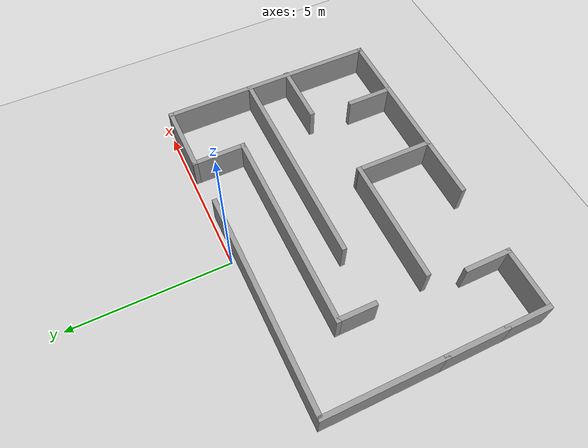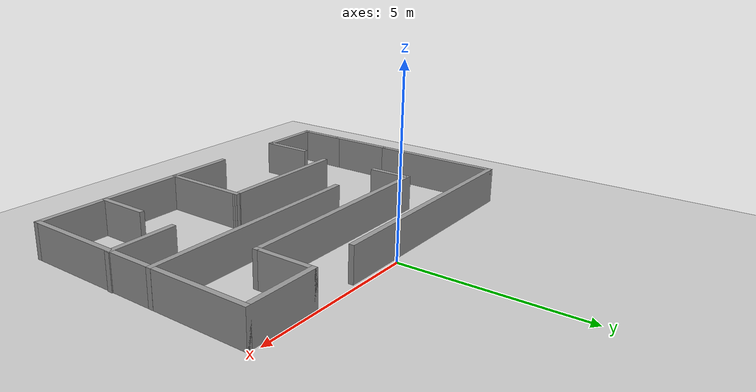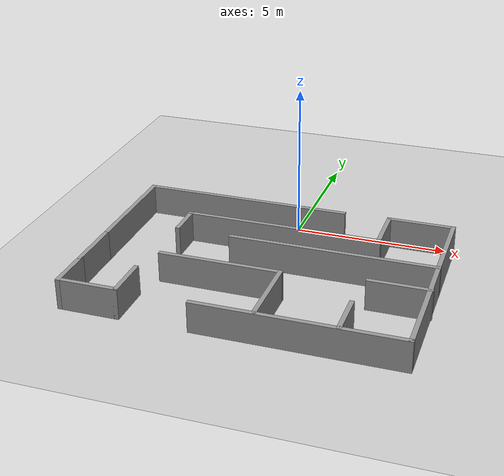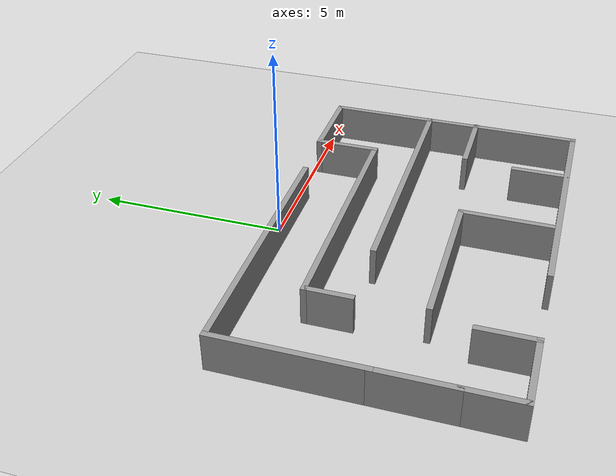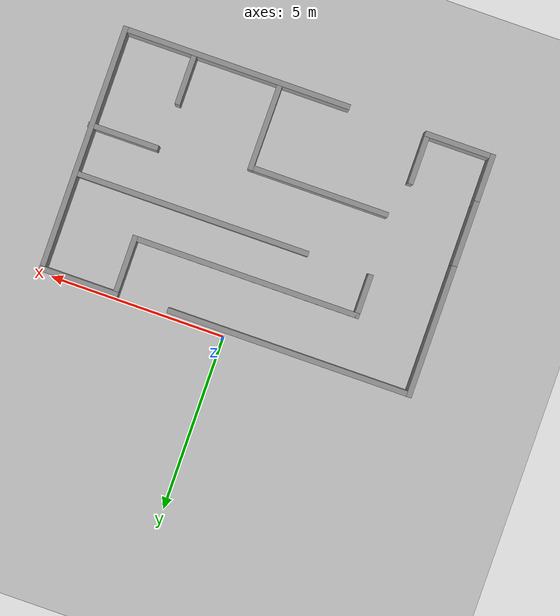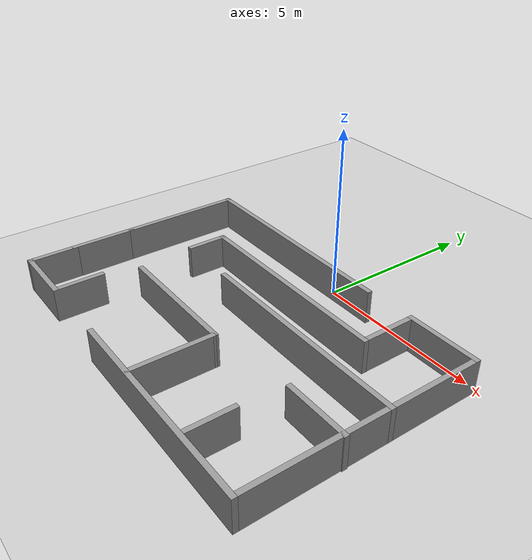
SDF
<sdf version="1.4">
  <world name="default">

    <scene>
      <ambient>0.4 0.4 0.4 1</ambient>
      <background>0.7 0.7 0.7 1</background>
      <shadows>true</shadows>
    </scene>

    <!-- A global light source -->
    <include>
      <uri>model://sun</uri>
    </include>

    <!-- A ground plane -->
    <include>
      <uri>model://ground_plane</uri>
    </include>

    <physics type="ode">
      <real_time_update_rate>1000.0</real_time_update_rate>
      <max_step_size>0.001</max_step_size>
      <real_time_factor>1</real_time_factor>
      <ode>
        <solver>
          <type>quick</type>
          <iters>150</iters>
          <precon_iters>0</precon_iters>
          <sor>1.400000</sor>
          <use_dynamic_moi_rescaling>1</use_dynamic_moi_rescaling>
        </solver>
        <constraints>
          <cfm>0.00001</cfm>
          <erp>0.2</erp>
          <contact_max_correcting_vel>2000.000000</contact_max_correcting_vel>
          <contact_surface_layer>0.01000</contact_surface_layer>
        </constraints>
      </ode>
    </physics>

    <!-- Load maze -->
    <include>
      <uri>model://test_maze</uri>
    </include>
  </world>

</sdf>

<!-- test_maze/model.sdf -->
<sdf version='1.6'>
  <model name='test_maze'>
    <pose frame=''>0 -3.57379 0 0 -0 0</pose>
    <link name='Wall_12'>
      <collision name='Wall_12_Collision'>
        <geometry>
          <box>
            <size>3.75 0.15 1</size>
          </box>
        </geometry>
        <pose frame=''>0 0 0.5 0 -0 0</pose>
      </collision>
      <visual name='Wall_12_Visual'>
        <pose frame=''>0 0 0.5 0 -0 0</pose>
        <geometry>
          <box>
            <size>3.75 0.15 1</size>
          </box>
        </geometry>
        <material>
          <script>
            <uri>file://media/materials/scripts/gazebo.material</uri>
            <name>Gazebo/Grey</name>
          </script>
          <ambient>1 1 1 1</ambient>
        </material>
        <meta>
          <layer>0</layer>
        </meta>
      </visual>
      <pose frame=''>-5.2625 1.5725 0 0 -0 1.5708</pose>
    </link>
    <link name='Wall_13'>
      <collision name='Wall_13_Collision'>
        <geometry>
          <box>
            <size>7 0.15 1</size>
          </box>
        </geometry>
        <pose frame=''>0 0 0.5 0 -0 0</pose>
      </collision>
      <visual name='Wall_13_Visual'>
        <pose frame=''>0 0 0.5 0 -0 0</pose>
        <geometry>
          <box>
            <size>7 0.15 1</size>
          </box>
        </geometry>
        <material>
          <script>
            <uri>file://media/materials/scripts/gazebo.material</uri>
            <name>Gazebo/Grey</name>
          </script>
          <ambient>1 1 1 1</ambient>
        </material>
        <meta>
          <layer>0</layer>
        </meta>
      </visual>
      <pose frame=''>-1.8375 3.3725 0 0 -0 0</pose>
    </link>
    <link name='Wall_15'>
      <collision name='Wall_15_Collision'>
        <geometry>
          <box>
            <size>2.25 0.15 1</size>
          </box>
        </geometry>
        <pose frame=''>0 0 0.5 0 -0 0</pose>
      </collision>
      <visual name='Wall_15_Visual'>
        <pose frame=''>0 0 0.5 0 -0 0</pose>
        <geometry>
          <box>
            <size>2.25 0.15 1</size>
          </box>
        </geometry>
        <material>
          <script>
            <uri>file://media/materials/scripts/gazebo.material</uri>
            <name>Gazebo/Grey</name>
          </script>
          <ambient>1 1 1 1</ambient>
        </material>
        <meta>
          <layer>0</layer>
        </meta>
      </visual>
      <pose frame=''>4.1845 3.4275 0 0 -0 0</pose>
    </link>
    <link name='Wall_16'>
      <collision name='Wall_16_Collision'>
        <geometry>
          <box>
            <size>7 0.15 1</size>
          </box>
        </geometry>
        <pose frame=''>0 0 0.5 0 -0 0</pose>
      </collision>
      <visual name='Wall_16_Visual'>
        <pose frame=''>0 0 0.5 0 -0 0</pose>
        <geometry>
          <box>
            <size>7 0.15 1</size>
          </box>
        </geometry>
        <material>
          <script>
            <uri>file://media/materials/scripts/gazebo.material</uri>
            <name>Gazebo/Grey</name>
          </script>
          <ambient>1 1 1 1</ambient>
        </material>
        <meta>
          <layer>0</layer>
        </meta>
      </visual>
      <pose frame=''>5.2345 0.0025 0 0 -0 -1.5708</pose>
    </link>
    <link name='Wall_17'>
      <collision name='Wall_17_Collision'>
        <geometry>
          <box>
            <size>6.5 0.15 1</size>
          </box>
        </geometry>
        <pose frame=''>0 0 0.5 0 -0 0</pose>
      </collision>
      <visual name='Wall_17_Visual'>
        <pose frame=''>0 0 0.5 0 -0 0</pose>
        <geometry>
          <box>
            <size>6.5 0.15 1</size>
          </box>
        </geometry>
        <material>
          <script>
            <uri>file://media/materials/scripts/gazebo.material</uri>
            <name>Gazebo/Grey</name>
          </script>
          <ambient>1 1 1 1</ambient>
        </material>
        <meta>
          <layer>0</layer>
        </meta>
      </visual>
      <pose frame=''>2.0595 -3.4225 0 0 -0 3.14159</pose>
    </link>
    <link name='Wall_19'>
      <collision name='Wall_19_Collision'>
        <geometry>
          <box>
            <size>1.5 0.15 1</size>
          </box>
        </geometry>
        <pose frame=''>0 0 0.5 0 -0 0</pose>
      </collision>
      <visual name='Wall_19_Visual'>
        <pose frame=''>0 0 0.5 0 -0 0</pose>
        <geometry>
          <box>
            <size>1.5 0.15 1</size>
          </box>
        </geometry>
        <material>
          <script>
            <uri>file://media/materials/scripts/gazebo.material</uri>
            <name>Gazebo/Grey</name>
          </script>
          <ambient>1 1 1 1</ambient>
        </material>
        <meta>
          <layer>0</layer>
        </meta>
      </visual>
      <pose frame=''>3.2415 -2.7065 0 0 -0 1.5708</pose>
    </link>
    <link name='Wall_21'>
      <collision name='Wall_21_Collision'>
        <geometry>
          <box>
            <size>2 0.15 1</size>
          </box>
        </geometry>
        <pose frame=''>0 0 0.5 0 -0 0</pose>
      </collision>
      <visual name='Wall_21_Visual'>
        <pose frame=''>0 0 0.5 0 -0 0</pose>
        <geometry>
          <box>
            <size>2 0.15 1</size>
          </box>
        </geometry>
        <material>
          <script>
            <uri>file://media/materials/scripts/gazebo.material</uri>
            <name>Gazebo/Grey</name>
          </script>
          <ambient>1 1 1 1</ambient>
        </material>
        <meta>
          <layer>0</layer>
        </meta>
      </visual>
      <pose frame=''>4.3375 -0.6685 0 0 -0 3.14159</pose>
    </link>
    <link name='Wall_23'>
      <collision name='Wall_23_Collision'>
        <geometry>
          <box>
            <size>1.75 0.15 1</size>
          </box>
        </geometry>
        <pose frame=''>0 0 0.5 0 -0 0</pose>
      </collision>
      <visual name='Wall_23_Visual'>
        <pose frame=''>0 0 0.5 0 -0 0</pose>
        <geometry>
          <box>
            <size>1.75 0.15 1</size>
          </box>
        </geometry>
        <material>
          <script>
            <uri>file://media/materials/scripts/gazebo.material</uri>
            <name>Gazebo/Grey</name>
          </script>
          <ambient>1 1 1 1</ambient>
        </material>
        <meta>
          <layer>0</layer>
        </meta>
      </visual>
      <pose frame=''>3.1345 2.6275 0 0 -0 -1.5708</pose>
    </link>
    <link name='Wall_24'>
      <collision name='Wall_24_Collision'>
        <geometry>
          <box>
            <size>6.5 0.15 1</size>
          </box>
        </geometry>
        <pose frame=''>0 0 0.5 0 -0 0</pose>
      </collision>
      <visual name='Wall_24_Visual'>
        <pose frame=''>0 0 0.5 0 -0 0</pose>
        <geometry>
          <box>
            <size>6.5 0.15 1</size>
          </box>
        </geometry>
        <material>
          <script>
            <uri>file://media/materials/scripts/gazebo.material</uri>
            <name>Gazebo/Grey</name>
          </script>
          <ambient>1 1 1 1</ambient>
        </material>
        <meta>
          <layer>0</layer>
        </meta>
      </visual>
      <pose frame=''>-0.0405 1.8275 0 0 -0 3.14159</pose>
    </link>
    <link name='Wall_27'>
      <collision name='Wall_27_Collision'>
        <geometry>
          <box>
            <size>1.25 0.15 1</size>
          </box>
        </geometry>
        <pose frame=''>0 0 0.5 0 -0 0</pose>
      </collision>
      <visual name='Wall_27_Visual'>
        <pose frame=''>0 0 0.5 0 -0 0</pose>
        <geometry>
          <box>
            <size>1.25 0.15 1</size>
          </box>
        </geometry>
        <material>
          <script>
            <uri>file://media/materials/scripts/gazebo.material</uri>
            <name>Gazebo/Grey</name>
          </script>
          <ambient>1 1 1 1</ambient>
        </material>
        <meta>
          <layer>0</layer>
        </meta>
      </visual>
      <pose frame=''>-3.2155 1.2775 0 0 -0 -1.5708</pose>
    </link>
    <link name='Wall_29'>
      <collision name='Wall_29_Collision'>
        <geometry>
          <box>
            <size>2.51973 0.15 1</size>
          </box>
        </geometry>
        <pose frame=''>0 0 0.5 0 -0 0</pose>
      </collision>
      <visual name='Wall_29_Visual'>
        <pose frame=''>0 0 0.5 0 -0 0</pose>
        <geometry>
          <box>
            <size>2.51973 0.15 1</size>
          </box>
        </geometry>
        <material>
          <script>
            <uri>file://media/materials/scripts/gazebo.material</uri>
            <name>Gazebo/Grey</name>
          </script>
          <ambient>1 1 1 1</ambient>
        </material>
        <meta>
          <layer>0</layer>
        </meta>
      </visual>
      <pose frame=''>0.7985 -2.1965 0 0 -0 1.56742</pose>
    </link>
    <link name='Wall_30'>
      <collision name='Wall_30_Collision'>
        <geometry>
          <box>
            <size>4 0.15 1</size>
          </box>
        </geometry>
        <pose frame=''>0 0 0.5 0 -0 0</pose>
      </collision>
      <visual name='Wall_30_Visual'>
        <pose frame=''>0 0 0.5 0 -0 0</pose>
        <geometry>
          <box>
            <size>4 0.15 1</size>
          </box>
        </geometry>
        <material>
          <script>
            <uri>file://media/materials/scripts/gazebo.material</uri>
            <name>Gazebo/Grey</name>
          </script>
          <ambient>1 1 1 1</ambient>
        </material>
        <meta>
          <layer>0</layer>
        </meta>
      </visual>
      <pose frame=''>-1.1225 -1.0115 0 0 -0 3.14159</pose>
    </link>
    <link name='Wall_32'>
      <collision name='Wall_32_Collision'>
        <geometry>
          <box>
            <size>6.75 0.15 1</size>
          </box>
        </geometry>
        <pose frame=''>0 0 0.5 0 -0 0</pose>
      </collision>
      <visual name='Wall_32_Visual'>
        <pose frame=''>0 0 0.5 0 -0 0</pose>
        <geometry>
          <box>
            <size>6.75 0.15 1</size>
          </box>
        </geometry>
        <material>
          <script>
            <uri>file://media/materials/scripts/gazebo.material</uri>
            <name>Gazebo/Grey</name>
          </script>
          <ambient>1 1 1 1</ambient>
        </material>
        <meta>
          <layer>0</layer>
        </meta>
      </visual>
      <pose frame=''>1.9365 0.6885 0 0 -0 3.14159</pose>
    </link>
    <link name='Wall_34'>
      <collision name='Wall_34_Collision'>
        <geometry>
          <box>
            <size>2 0.15 1</size>
          </box>
        </geometry>
        <pose frame=''>0 0 0.5 0 -0 0</pose>
      </collision>
      <visual name='Wall_34_Visual'>
        <pose frame=''>0 0 0.5 0 -0 0</pose>
        <geometry>
          <box>
            <size>2 0.15 1</size>
          </box>
        </geometry>
        <material>
          <script>
            <uri>file://media/materials/scripts/gazebo.material</uri>
            <name>Gazebo/Grey</name>
          </script>
          <ambient>1 1 1 1</ambient>
        </material>
        <meta>
          <layer>0</layer>
        </meta>
      </visual>
      <pose frame=''>-5.2625 -1.1525 0 0 -0 -1.5708</pose>
    </link>
    <link name='Wall_5'>
      <collision name='Wall_5_Collision'>
        <geometry>
          <box>
            <size>1.5 0.15 1</size>
          </box>
        </geometry>
        <pose frame=''>0 0 0.5 0 -0 0</pose>
      </collision>
      <visual name='Wall_5_Visual'>
        <pose frame=''>0 0 0.5 0 -0 0</pose>
        <geometry>
          <box>
            <size>1.5 0.15 1</size>
          </box>
        </geometry>
        <material>
          <script>
            <uri>file://media/materials/scripts/gazebo.material</uri>
            <name>Gazebo/Grey</name>
          </script>
          <ambient>1 1 1 1</ambient>
        </material>
        <meta>
          <layer>0</layer>
        </meta>
      </visual>
      <pose frame=''>-5.2625 -2.7525 0 0 -0 -1.5708</pose>
    </link>
    <link name='Wall_6'>
      <collision name='Wall_6_Collision'>
        <geometry>
          <box>
            <size>2 0.15 1</size>
          </box>
        </geometry>
        <pose frame=''>0 0 0.5 0 -0 0</pose>
      </collision>
      <visual name='Wall_6_Visual'>
        <pose frame=''>0 0 0.5 0 -0 0</pose>
        <geometry>
          <box>
            <size>2 0.15 1</size>
          </box>
        </geometry>
        <material>
          <script>
            <uri>file://media/materials/scripts/gazebo.material</uri>
            <name>Gazebo/Grey</name>
          </script>
          <ambient>1 1 1 1</ambient>
        </material>
        <meta>
          <layer>0</layer>
        </meta>
      </visual>
      <pose frame=''>-4.3375 -3.4275 0 0 -0 0</pose>
    </link>
    <link name='Wall_7'>
      <collision name='Wall_7_Collision'>
        <geometry>
          <box>
            <size>1.5 0.15 1</size>
          </box>
        </geometry>
        <pose frame=''>0 0 0.5 0 -0 0</pose>
      </collision>
      <visual name='Wall_7_Visual'>
        <pose frame=''>0 0 0.5 0 -0 0</pose>
        <geometry>
          <box>
            <size>1.5 0.15 1</size>
          </box>
        </geometry>
        <material>
          <script>
            <uri>file://media/materials/scripts/gazebo.material</uri>
            <name>Gazebo/Grey</name>
          </script>
          <ambient>1 1 1 1</ambient>
        </material>
        <meta>
          <layer>0</layer>
        </meta>
      </visual>
      <pose frame=''>-3.4125 -2.7525 0 0 -0 1.5708</pose>
    </link>
    <static>1</static>
  </model>
</sdf>
